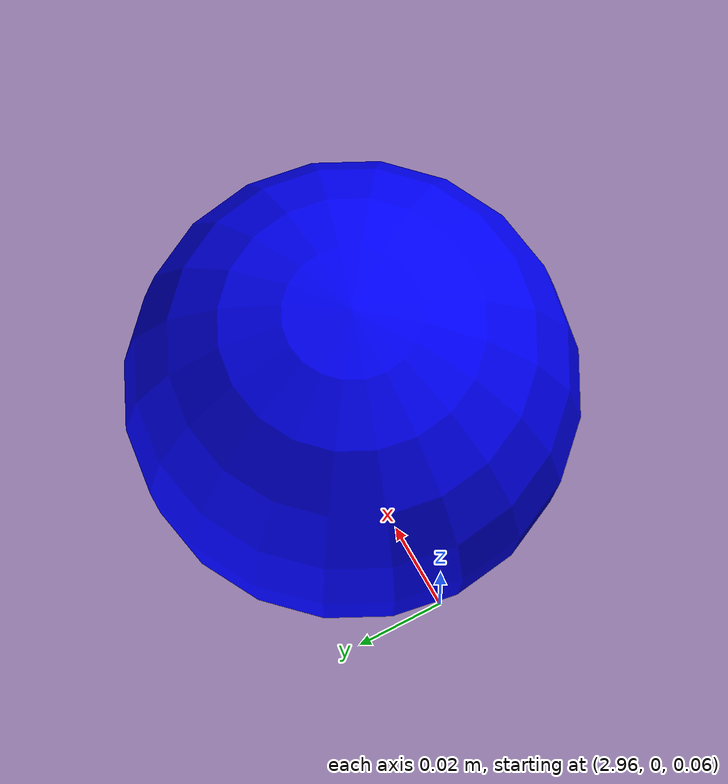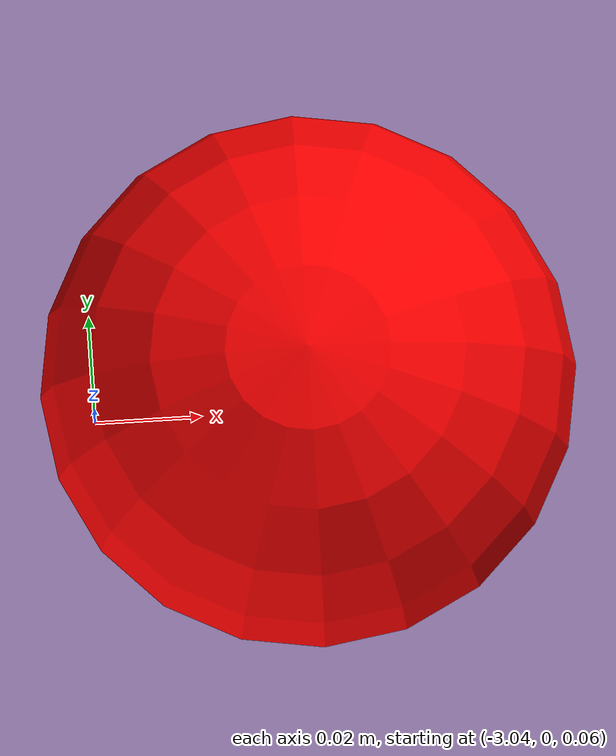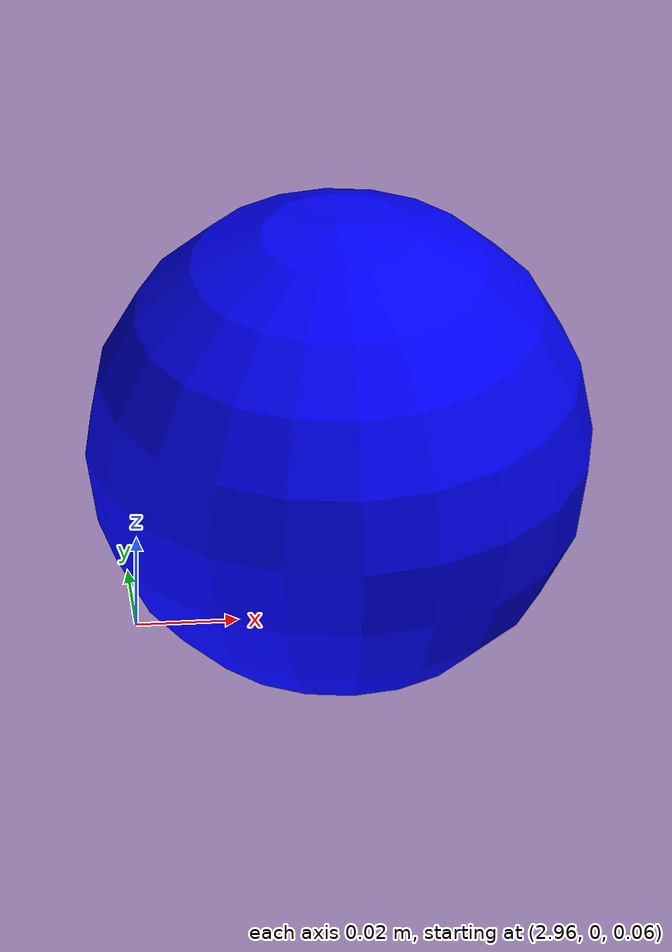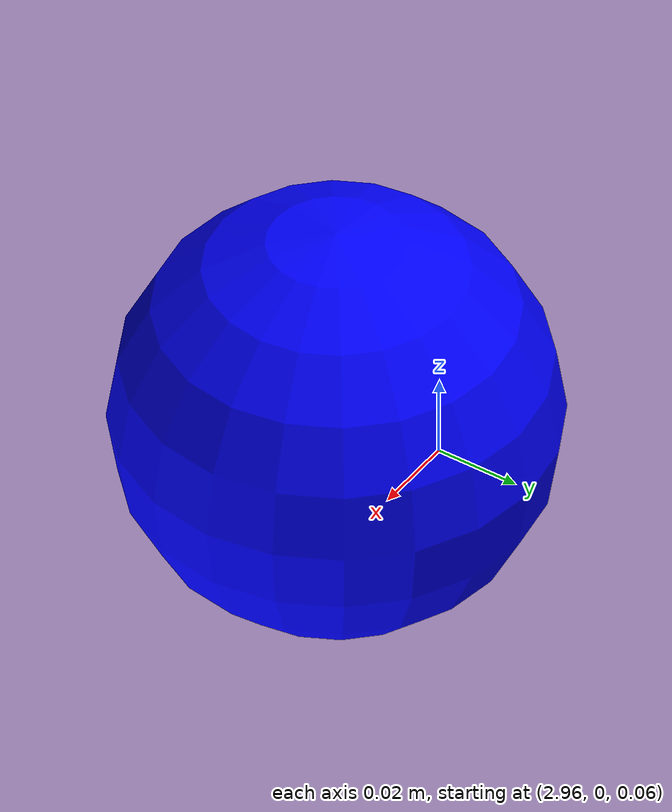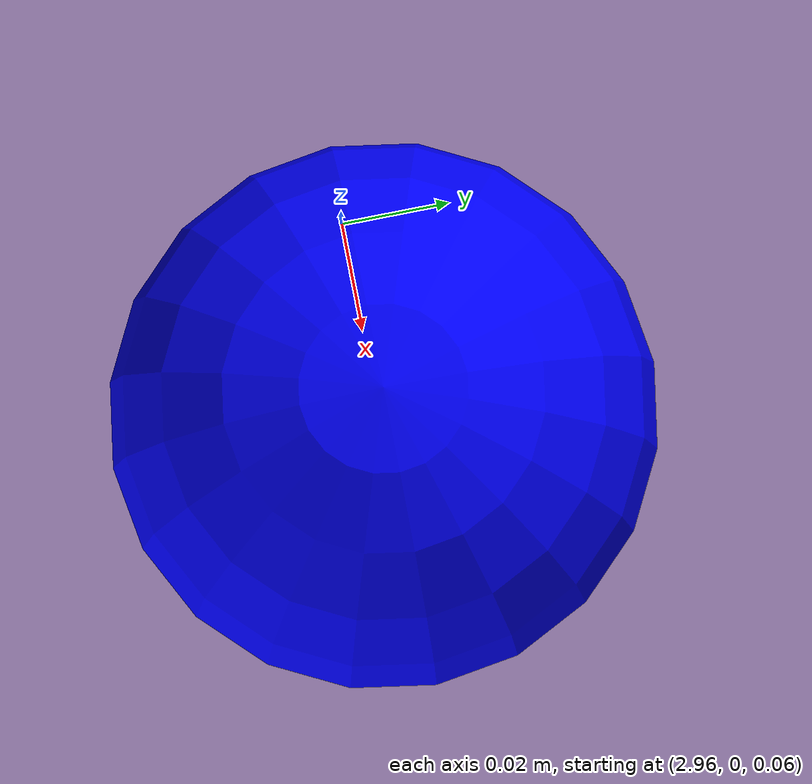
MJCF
<mujoco model="horizontal_frictionless_slide">
    <compiler angle="radian"/>
    <option gravity="0 0 -9.81"/>  <!-- Standard gravity -->

    <worldbody>
        <!-- Big Plane -->
            <body name="surface" pos="-10 0 -0.5">
                <geom type="plane" size="30 30 0.1" rgba="0.7 0.7 0.7 1" friction="0.4 0.4 0.4"/>
            </body>
        <!-- Frictionless Horizontal Surface -->
        <geom name="frictionless_plane" type="plane" pos="0 0 0" size="5 5 0.1"
              rgba="0.6 0.5 0.7 1" friction="0 0 0"/>  <!-- No friction -->

        <!-- The Ball (Starts above the surface) -->
        <body name="ball" pos="-3 0 0.1">
            <joint type="free"/>
            <geom name="test_ball" type="sphere" size="0.05" density="10" rgba="1 0 0 1"/>
        </body>
        <!--The second ball-->
        <body name="sphere" pos="3 0 0.1">
            <joint type="free"/>
            <geom name="test_sphere" type="sphere" size="0.05" density="10" rgba="0 0 1 1"/>
        </body>
    </worldbody>
</mujoco>
